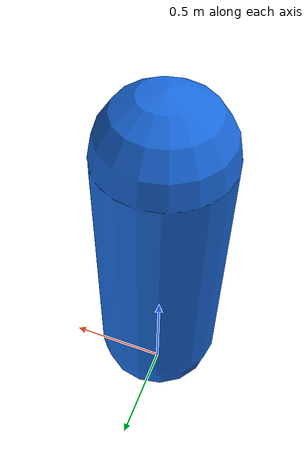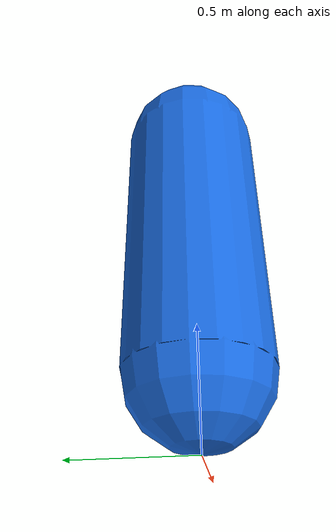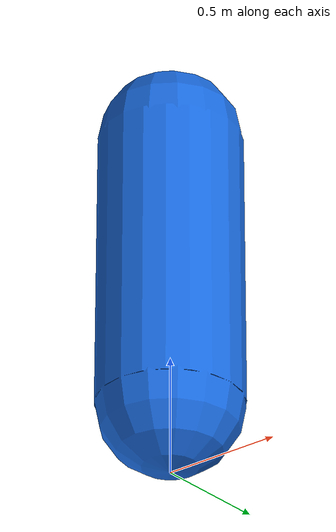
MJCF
<mujoco model="lingtu_pedestrian_capsule">
  <compiler angle="radian"/>
  <worldbody>
    <body name="proxy_root" mocap="true">
      <geom name="collision" type="capsule" pos="0 0 0.9" size="0.30 0.60"
            contype="1" conaffinity="1" rgba="0.10 0.42 0.88 1"/>
    </body>
  </worldbody>
</mujoco>
